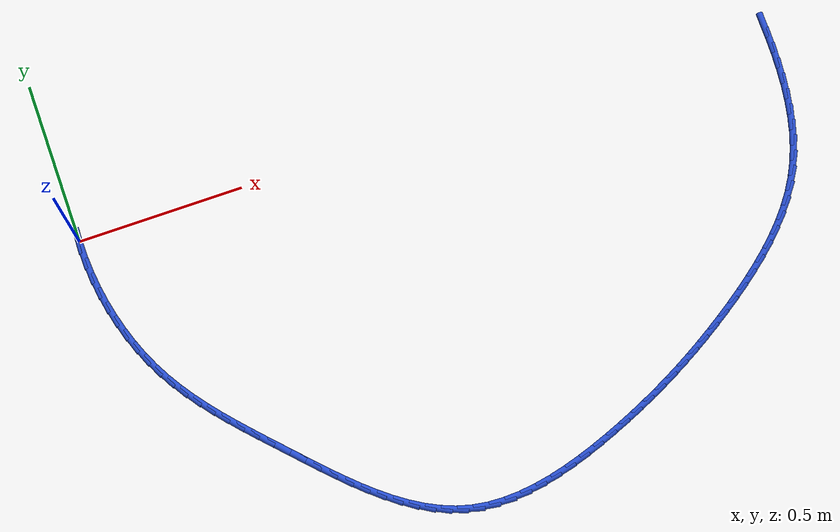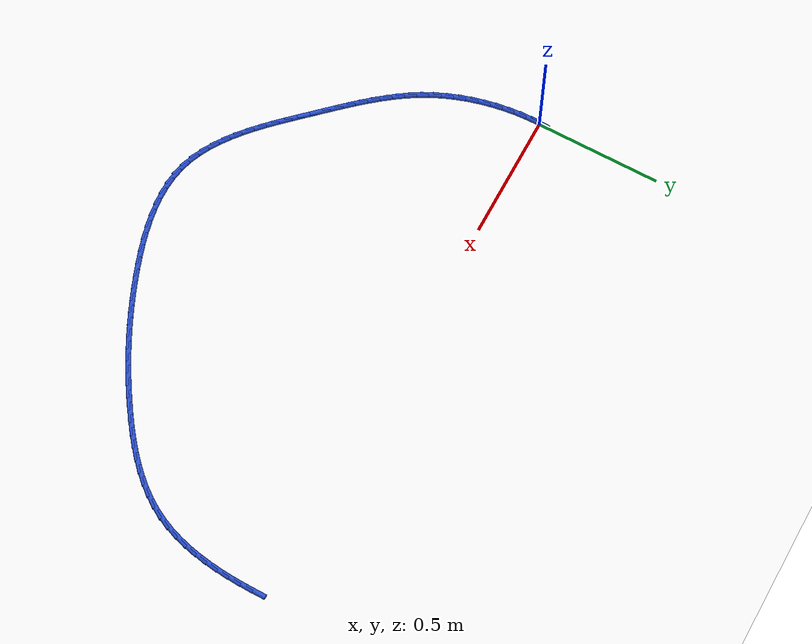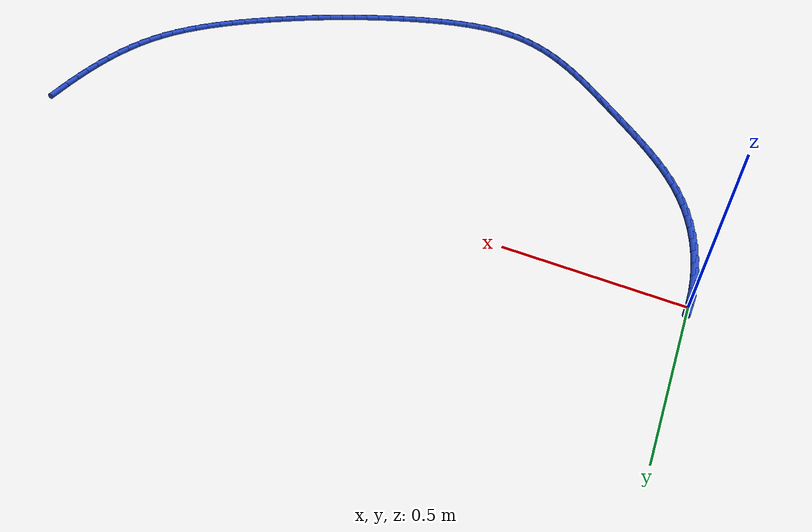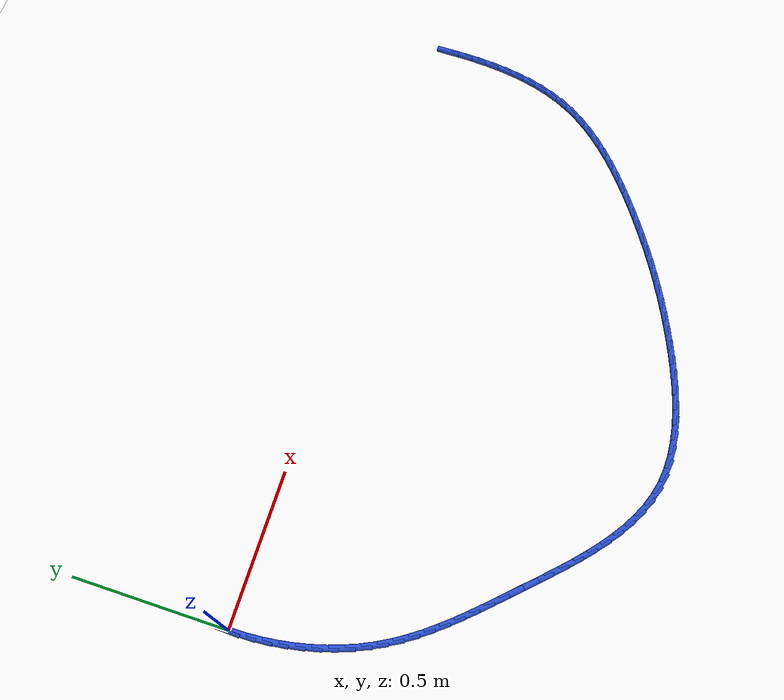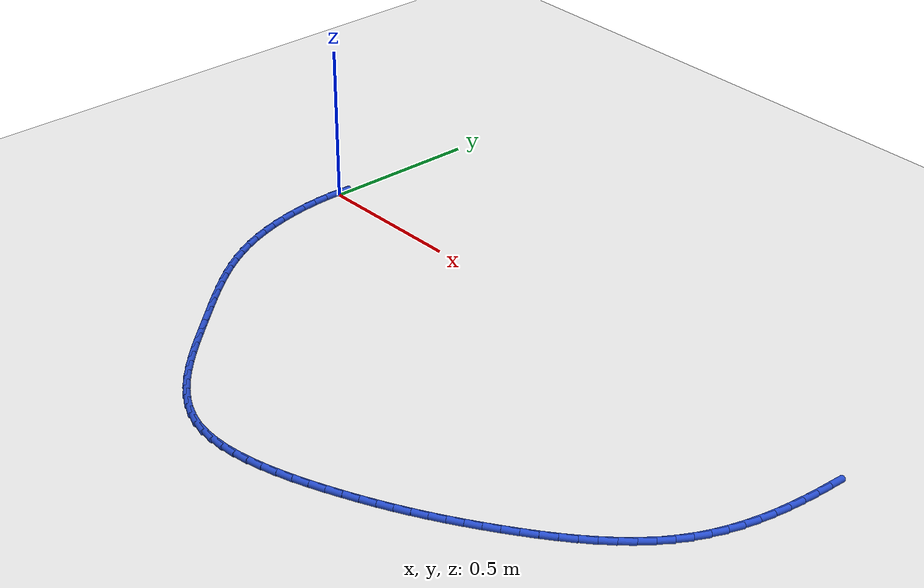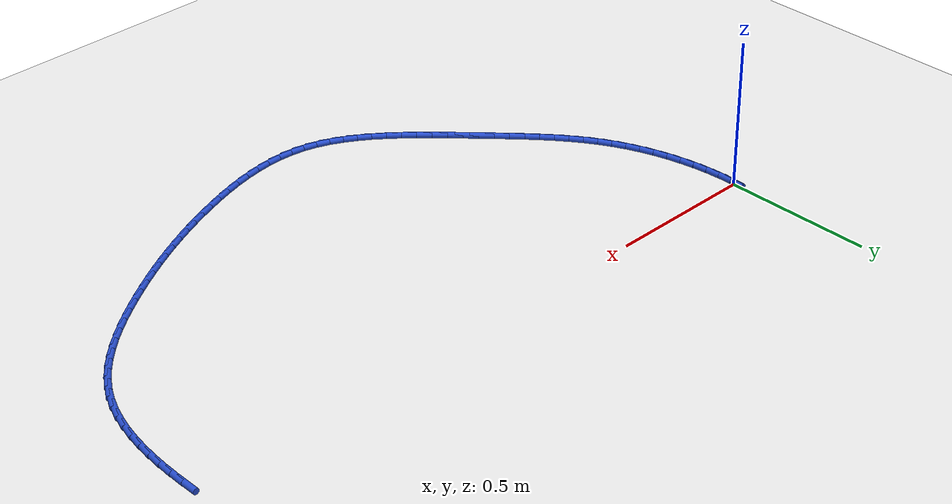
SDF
<sdf version="1.6">
 <world name="default">
  <model name="ground_plane">
   <static>1</static>
   <link name="link">
    <collision name="collision">
     <geometry><plane><normal>0 0 1</normal><size>100 100</size></plane></geometry>
     <surface><friction><ode><mu>100</mu><mu2>50</mu2></ode></friction></surface>
    </collision>
    <visual name="visual">
     <cast_shadows>0</cast_shadows>
     <geometry><plane><normal>0 0 1</normal><size>100 100</size></plane></geometry>
     <material>
      <script><uri>file://media/materials/scripts/gazebo.material</uri><name>Gazebo/WhiteGlow</name></script>
     </material>
    </visual>
   </link>
  </model>
  <model name="line">
   <link name="link_0">
    <pose>4.5102810375396984e-17 -1.3877787807814457e-16 0.01 0 1.57 1.5298107565489703</pose>
    <collision name="collision">
     <geometry><cylinder><radius>0.01</radius><length>0.08</length></cylinder></geometry>
    </collision>
    <visual name="visual">
     <material>
      <script><name>Gazebo/Blue</name><uri>file://media/materials/scripts/gazebo.material</uri></script>
     </material>
     <geometry><cylinder><radius>0.01</radius><length>0.08</length></cylinder></geometry>
    </visual>
   </link>
   <link name="link_71">
    <pose>2.126155542107821 -0.04058322605227191 0.01 0 1.57 1.5616176386527165</pose>
    <collision name="collision">
     <geometry><cylinder><radius>0.01</radius><length>0.08</length></cylinder></geometry>
    </collision>
    <visual name="visual">
     <material>
      <script><name>Gazebo/Blue</name><uri>file://media/materials/scripts/gazebo.material</uri></script>
     </material>
     <geometry><cylinder><radius>0.01</radius><length>0.08</length></cylinder></geometry>
    </visual>
   </link>
   <link name="link_72">
    <pose>2.125694081891426 -0.09085699612621957 0.01 0 1.57 1.534104118408321</pose>
    <collision name="collision">
     <geometry><cylinder><radius>0.01</radius><length>0.08</length></cylinder></geometry>
    </collision>
    <visual name="visual">
     <material>
      <script><name>Gazebo/Blue</name><uri>file://media/materials/scripts/gazebo.material</uri></script>
     </material>
     <geometry><cylinder><radius>0.01</radius><length>0.08</length></cylinder></geometry>
    </visual>
   </link>
   <link name="link_73">
    <pose>2.1238617576548817 -0.14077227640328635 0.01 0 1.57 1.500950438704793</pose>
    <collision name="collision">
     <geometry><cylinder><radius>0.01</radius><length>0.08</length></cylinder></geometry>
    </collision>
    <visual name="visual">
     <material>
      <script><name>Gazebo/Blue</name><uri>file://media/materials/scripts/gazebo.material</uri></script>
     </material>
     <geometry><cylinder><radius>0.01</radius><length>0.08</length></cylinder></geometry>
    </visual>
   </link>
   <link name="link_74">
    <pose>2.1204061514982513 -0.19016652266173714 0.01 0 1.57 1.4617818117217025</pose>
    <collision name="collision">
     <geometry><cylinder><radius>0.01</radius><length>0.08</length></cylinder></geometry>
    </collision>
    <visual name="visual">
     <material>
      <script><name>Gazebo/Blue</name><uri>file://media/materials/scripts/gazebo.material</uri></script>
     </material>
     <geometry><cylinder><radius>0.01</radius><length>0.08</length></cylinder></geometry>
    </visual>
   </link>
   <link name="link_75">
    <pose>2.1150748455215966 -0.23887719067983923 0.01 0 1.57 1.4161954958157235</pose>
    <collision name="collision">
     <geometry><cylinder><radius>0.01</radius><length>0.08</length></cylinder></geometry>
    </collision>
    <visual name="visual">
     <material>
      <script><name>Gazebo/Blue</name><uri>file://media/materials/scripts/gazebo.material</uri></script>
     </material>
     <geometry><cylinder><radius>0.01</radius><length>0.08</length></cylinder></geometry>
    </visual>
   </link>
   <link name="link_76">
    <pose>2.107615421824979 -0.28674173623585913 0.01 0 1.57 1.3637995384842094</pose>
    <collision name="collision">
     <geometry><cylinder><radius>0.01</radius><length>0.08</length></cylinder></geometry>
    </collision>
    <visual name="visual">
     <material>
      <script><name>Gazebo/Blue</name><uri>file://media/materials/scripts/gazebo.material</uri></script>
     </material>
     <geometry><cylinder><radius>0.01</radius><length>0.08</length></cylinder></geometry>
    </visual>
   </link>
   <link name="link_77">
    <pose>2.097775462508461 -0.33359761510806335 0.01 0 1.57 1.304270109160531</pose>
    <collision name="collision">
     <geometry><cylinder><radius>0.01</radius><length>0.08</length></cylinder></geometry>
    </collision>
    <visual name="visual">
     <material>
      <script><name>Gazebo/Blue</name><uri>file://media/materials/scripts/gazebo.material</uri></script>
     </material>
     <geometry><cylinder><radius>0.01</radius><length>0.08</length></cylinder></geometry>
    </visual>
   </link>
   <link name="link_78">
    <pose>2.085302549672104 -0.3792822830747189 0.01 0 1.57 1.2374303117309948</pose>
    <collision name="collision">
     <geometry><cylinder><radius>0.01</radius><length>0.08</length></cylinder></geometry>
    </collision>
    <visual name="visual">
     <material>
      <script><name>Gazebo/Blue</name><uri>file://media/materials/scripts/gazebo.material</uri></script>
     </material>
     <geometry><cylinder><radius>0.01</radius><length>0.08</length></cylinder></geometry>
    </visual>
   </link>
   <link name="link_79">
    <pose>2.0699442654159705 -0.4236331959140911 0.01 0 1.57 1.1633482874820653</pose>
    <collision name="collision">
     <geometry><cylinder><radius>0.01</radius><length>0.08</length></cylinder></geometry>
    </collision>
    <visual name="visual">
     <material>
      <script><name>Gazebo/Blue</name><uri>file://media/materials/scripts/gazebo.material</uri></script>
     </material>
     <geometry><cylinder><radius>0.01</radius><length>0.08</length></cylinder></geometry>
    </visual>
   </link>
   <link name="link_80">
    <pose>2.0514481918401213 -0.466487809404447 0.01 0 1.57 1.0824429496278638</pose>
    <collision name="collision">
     <geometry><cylinder><radius>0.01</radius><length>0.08</length></cylinder></geometry>
    </collision>
    <visual name="visual">
     <material>
      <script><name>Gazebo/Blue</name><uri>file://media/materials/scripts/gazebo.material</uri></script>
     </material>
     <geometry><cylinder><radius>0.01</radius><length>0.08</length></cylinder></geometry>
    </visual>
   </link>
   <link name="link_81">
    <pose>2.0295619126116384 -0.5076835799189534 0.01 0 1.57 0.9981407344268346</pose>
    <collision name="collision">
     <geometry><cylinder><radius>0.01</radius><length>0.08</length></cylinder></geometry>
    </collision>
    <visual name="visual">
     <material>
      <script><name>Gazebo/Blue</name><uri>file://media/materials/scripts/gazebo.material</uri></script>
     </material>
     <geometry><cylinder><radius>0.01</radius><length>0.08</length></cylinder></geometry>
    </visual>
   </link>
   <link name="link_82">
    <pose>2.0041482035846974 -0.547101695192288 0.01 0 1.57 0.9207548499879681</pose>
    <collision name="collision">
     <geometry><cylinder><radius>0.01</radius><length>0.08</length></cylinder></geometry>
    </collision>
    <visual name="visual">
     <material>
      <script><name>Gazebo/Blue</name><uri>file://media/materials/scripts/gazebo.material</uri></script>
     </material>
     <geometry><cylinder><radius>0.01</radius><length>0.08</length></cylinder></geometry>
    </visual>
   </link>
   <link name="link_83">
    <pose>1.9754980369084643 -0.5847859026556256 0.01 0 1.57 0.8524641445979597</pose>
    <collision name="collision">
     <geometry><cylinder><radius>0.01</radius><length>0.08</length></cylinder></geometry>
    </collision>
    <visual name="visual">
     <material>
      <script><name>Gazebo/Blue</name><uri>file://media/materials/scripts/gazebo.material</uri></script>
     </material>
     <geometry><cylinder><radius>0.01</radius><length>0.08</length></cylinder></geometry>
    </visual>
   </link>
   <link name="link_84">
    <pose>1.9440018587713128 -0.6208177138913336 0.01 0 1.57 0.7928408458551787</pose>
    <collision name="collision">
     <geometry><cylinder><radius>0.01</radius><length>0.08</length></cylinder></geometry>
    </collision>
    <visual name="visual">
     <material>
      <script><name>Gazebo/Blue</name><uri>file://media/materials/scripts/gazebo.material</uri></script>
     </material>
     <geometry><cylinder><radius>0.01</radius><length>0.08</length></cylinder></geometry>
    </visual>
   </link>
   <link name="link_85">
    <pose>1.9100501153616152 -0.6552786404817791 0.01 0 1.57 0.741284477686743</pose>
    <collision name="collision">
     <geometry><cylinder><radius>0.01</radius><length>0.08</length></cylinder></geometry>
    </collision>
    <visual name="visual">
     <material>
      <script><name>Gazebo/Blue</name><uri>file://media/materials/scripts/gazebo.material</uri></script>
     </material>
     <geometry><cylinder><radius>0.01</radius><length>0.08</length></cylinder></geometry>
    </visual>
   </link>
   <link name="link_86">
    <pose>1.8740332528677472 -0.6882501940093289 0.01 0 1.57 0.6971459620865529</pose>
    <collision name="collision">
     <geometry><cylinder><radius>0.01</radius><length>0.08</length></cylinder></geometry>
    </collision>
    <visual name="visual">
     <material>
      <script><name>Gazebo/Blue</name><uri>file://media/materials/scripts/gazebo.material</uri></script>
     </material>
     <geometry><cylinder><radius>0.01</radius><length>0.08</length></cylinder></geometry>
    </visual>
   </link>
   <link name="link_87">
    <pose>1.83634171747808 -0.7198138860563503 0.01 0 1.57 0.6598088132379634</pose>
    <collision name="collision">
     <geometry><cylinder><radius>0.01</radius><length>0.08</length></cylinder></geometry>
    </collision>
    <visual name="visual">
     <material>
      <script><name>Gazebo/Blue</name><uri>file://media/materials/scripts/gazebo.material</uri></script>
     </material>
     <geometry><cylinder><radius>0.01</radius><length>0.08</length></cylinder></geometry>
    </visual>
   </link>
   <link name="link_88">
    <pose>1.7973659553809889 -0.7500512282052094 0.01 0 1.57 0.6287384214249829</pose>
    <collision name="collision">
     <geometry><cylinder><radius>0.01</radius><length>0.08</length></cylinder></geometry>
    </collision>
    <visual name="visual">
     <material>
      <script><name>Gazebo/Blue</name><uri>file://media/materials/scripts/gazebo.material</uri></script>
     </material>
     <geometry><cylinder><radius>0.01</radius><length>0.08</length></cylinder></geometry>
    </visual>
   </link>
   <link name="link_89">
    <pose>1.7574964127648467 -0.7790437320382735 0.01 0 1.57 0.6035111698221294</pose>
    <collision name="collision">
     <geometry><cylinder><radius>0.01</radius><length>0.08</length></cylinder></geometry>
    </collision>
    <visual name="visual">
     <material>
      <script><name>Gazebo/Blue</name><uri>file://media/materials/scripts/gazebo.material</uri></script>
     </material>
     <geometry><cylinder><radius>0.01</radius><length>0.08</length></cylinder></geometry>
    </visual>
   </link>
   <link name="link_90">
    <pose>1.7171235358180272 -0.8068729091379093 0.01 0 1.57 0.5831162640980315</pose>
    <collision name="collision">
     <geometry><cylinder><radius>0.01</radius><length>0.08</length></cylinder></geometry>
    </collision>
    <visual name="visual">
     <material>
      <script><name>Gazebo/Blue</name><uri>file://media/materials/scripts/gazebo.material</uri></script>
     </material>
     <geometry><cylinder><radius>0.01</radius><length>0.08</length></cylinder></geometry>
    </visual>
   </link>
   <link name="link_91">
    <pose>1.676582277713363 -0.833615199317259 0.01 0 1.57 0.5633278113620747</pose>
    <collision name="collision">
     <geometry><cylinder><radius>0.01</radius><length>0.08</length></cylinder></geometry>
    </collision>
    <visual name="visual">
     <material>
      <script><name>Gazebo/Blue</name><uri>file://media/materials/scripts/gazebo.material</uri></script>
     </material>
     <geometry><cylinder><radius>0.01</radius><length>0.08</length></cylinder></geometry>
    </visual>
   </link>
   <link name="link_92">
    <pose>1.6358875470246985 -0.8593177919994418 0.01 0 1.57 0.5427676317736418</pose>
    <collision name="collision">
     <geometry><cylinder><radius>0.01</radius><length>0.08</length></cylinder></geometry>
    </collision>
    <visual name="visual">
     <material>
      <script><name>Gazebo/Blue</name><uri>file://media/materials/scripts/gazebo.material</uri></script>
     </material>
     <geometry><cylinder><radius>0.01</radius><length>0.08</length></cylinder></geometry>
    </visual>
   </link>
   <link name="link_93">
    <pose>1.5949397620266814 -0.8840174127974857 0.01 0 1.57 0.5215710474628408</pose>
    <collision name="collision">
     <geometry><cylinder><radius>0.01</radius><length>0.08</length></cylinder></geometry>
    </collision>
    <visual name="visual">
     <material>
      <script><name>Gazebo/Blue</name><uri>file://media/materials/scripts/gazebo.material</uri></script>
     </material>
     <geometry><cylinder><radius>0.01</radius><length>0.08</length></cylinder></geometry>
    </visual>
   </link>
   <link name="link_94">
    <pose>1.5536391964447314 -0.9077507741133805 0.01 0 1.57 0.4998894465449433</pose>
    <collision name="collision">
     <geometry><cylinder><radius>0.01</radius><length>0.08</length></cylinder></geometry>
    </collision>
    <visual name="visual">
     <material>
      <script><name>Gazebo/Blue</name><uri>file://media/materials/scripts/gazebo.material</uri></script>
     </material>
     <geometry><cylinder><radius>0.01</radius><length>0.08</length></cylinder></geometry>
    </visual>
   </link>
   <link name="link_95">
    <pose>1.5118861240042676 -0.930554588349116 0.01 0 1.57 0.4778846388692233</pose>
    <collision name="collision">
     <geometry><cylinder><radius>0.01</radius><length>0.08</length></cylinder></geometry>
    </collision>
    <visual name="visual">
     <material>
      <script><name>Gazebo/Blue</name><uri>file://media/materials/scripts/gazebo.material</uri></script>
     </material>
     <geometry><cylinder><radius>0.01</radius><length>0.08</length></cylinder></geometry>
    </visual>
   </link>
   <link name="link_96">
    <pose>1.4695808184307106 -0.9524655679066814 0.01 0 1.57 0.4557244759910862</pose>
    <collision name="collision">
     <geometry><cylinder><radius>0.01</radius><length>0.08</length></cylinder></geometry>
    </collision>
    <visual name="visual">
     <material>
      <script><name>Gazebo/Blue</name><uri>file://media/materials/scripts/gazebo.material</uri></script>
     </material>
     <geometry><cylinder><radius>0.01</radius><length>0.08</length></cylinder></geometry>
    </visual>
   </link>
   <link name="link_97">
    <pose>1.4266235534494796 -0.9735204251880665 0.01 0 1.57 0.433578132231456</pose>
    <collision name="collision">
     <geometry><cylinder><radius>0.01</radius><length>0.08</length></cylinder></geometry>
    </collision>
    <visual name="visual">
     <material>
      <script><name>Gazebo/Blue</name><uri>file://media/materials/scripts/gazebo.material</uri></script>
     </material>
     <geometry><cylinder><radius>0.01</radius><length>0.08</length></cylinder></geometry>
    </visual>
   </link>
   <link name="link_98">
    <pose>1.382914602785995 -0.9937558725952614 0.01 0 1.57 0.4116113469931328</pose>
    <collision name="collision">
     <geometry><cylinder><radius>0.01</radius><length>0.08</length></cylinder></geometry>
    </collision>
    <visual name="visual">
     <material>
      <script><name>Gazebo/Blue</name><uri>file://media/materials/scripts/gazebo.material</uri></script>
     </material>
     <geometry><cylinder><radius>0.01</radius><length>0.08</length></cylinder></geometry>
    </visual>
   </link>
   <link name="link_99">
    <pose>1.3383542401656754 -1.013208622530255 0.01 0 1.57 0.38998193161550776</pose>
    <collision name="collision">
     <geometry><cylinder><radius>0.01</radius><length>0.08</length></cylinder></geometry>
    </collision>
    <visual name="visual">
     <material>
      <script><name>Gazebo/Blue</name><uri>file://media/materials/scripts/gazebo.material</uri></script>
     </material>
     <geometry><cylinder><radius>0.01</radius><length>0.08</length></cylinder></geometry>
    </visual>
   </link>
   <link name="link_100">
    <pose>1.2928427393139401 -1.031915387395038 0.01 0 1.57 0.36842432659064034</pose>
    <collision name="collision">
     <geometry><cylinder><radius>0.01</radius><length>0.08</length></cylinder></geometry>
    </collision>
    <visual name="visual">
     <material>
      <script><name>Gazebo/Blue</name><uri>file://media/materials/scripts/gazebo.material</uri></script>
     </material>
     <geometry><cylinder><radius>0.01</radius><length>0.08</length></cylinder></geometry>
    </visual>
   </link>
   <link name="link_101">
    <pose>1.246302886306749 -1.049882169925419 0.01 0 1.57 0.3430309051947211</pose>
    <collision name="collision">
     <geometry><cylinder><radius>0.01</radius><length>0.08</length></cylinder></geometry>
    </collision>
    <visual name="visual">
     <material>
      <script><name>Gazebo/Blue</name><uri>file://media/materials/scripts/gazebo.material</uri></script>
     </material>
     <geometry><cylinder><radius>0.01</radius><length>0.08</length></cylinder></geometry>
    </visual>
   </link>
   <link name="link_102">
    <pose>1.1988721773743887 -1.066822081310665 0.01 0 1.57 0.31126762344335873</pose>
    <collision name="collision">
     <geometry><cylinder><radius>0.01</radius><length>0.08</length></cylinder></geometry>
    </collision>
    <visual name="visual">
     <material>
      <script><name>Gazebo/Blue</name><uri>file://media/materials/scripts/gazebo.material</uri></script>
     </material>
     <geometry><cylinder><radius>0.01</radius><length>0.08</length></cylinder></geometry>
    </visual>
   </link>
   <link name="link_103">
    <pose>1.150807156164525 -1.0822858371500694 0.01 0 1.57 0.27249101662620795</pose>
    <collision name="collision">
     <geometry><cylinder><radius>0.01</radius><length>0.08</length></cylinder></geometry>
    </collision>
    <visual name="visual">
     <material>
      <script><name>Gazebo/Blue</name><uri>file://media/materials/scripts/gazebo.material</uri></script>
     </material>
     <geometry><cylinder><radius>0.01</radius><length>0.08</length></cylinder></geometry>
    </visual>
   </link>
   <link name="link_104">
    <pose>1.1023656340919437 -1.095822423649759 0.01 0 1.57 0.2258640858415369</pose>
    <collision name="collision">
     <geometry><cylinder><radius>0.01</radius><length>0.08</length></cylinder></geometry>
    </collision>
    <visual name="visual">
     <material>
      <script><name>Gazebo/Blue</name><uri>file://media/materials/scripts/gazebo.material</uri></script>
     </material>
     <geometry><cylinder><radius>0.01</radius><length>0.08</length></cylinder></geometry>
    </visual>
   </link>
   <link name="link_105">
    <pose>1.0538054225714326 -1.1069808270158594 0.01 0 1.57 0.1703489625053704</pose>
    <collision name="collision">
     <geometry><cylinder><radius>0.01</radius><length>0.08</length></cylinder></geometry>
    </collision>
    <visual name="visual">
     <material>
      <script><name>Gazebo/Blue</name><uri>file://media/materials/scripts/gazebo.material</uri></script>
     </material>
     <geometry><cylinder><radius>0.01</radius><length>0.08</length></cylinder></geometry>
    </visual>
   </link>
   <link name="link_106">
    <pose>1.00538433301778 -1.1153100334544992 0.01 0 1.57 0.10474969052787847</pose>
    <collision name="collision">
     <geometry><cylinder><radius>0.01</radius><length>0.08</length></cylinder></geometry>
    </collision>
    <visual name="visual">
     <material>
      <script><name>Gazebo/Blue</name><uri>file://media/materials/scripts/gazebo.material</uri></script>
     </material>
     <geometry><cylinder><radius>0.01</radius><length>0.08</length></cylinder></geometry>
    </visual>
   </link>
   <link name="link_107">
    <pose>0.9573601768457726 -1.1203590291718053 0.01 0 1.57 0.027811859619557212</pose>
    <collision name="collision">
     <geometry><cylinder><radius>0.01</radius><length>0.08</length></cylinder></geometry>
    </collision>
    <visual name="visual">
     <material>
      <script><name>Gazebo/Blue</name><uri>file://media/materials/scripts/gazebo.material</uri></script>
     </material>
     <geometry><cylinder><radius>0.01</radius><length>0.08</length></cylinder></geometry>
    </visual>
   </link>
   <link name="link_108">
    <pose>0.909990765470197 -1.1216768003739033 0.01 0 1.57 -0.061580692907020264</pose>
    <collision name="collision">
     <geometry><cylinder><radius>0.01</radius><length>0.08</length></cylinder></geometry>
    </collision>
    <visual name="visual">
     <material>
      <script><name>Gazebo/Blue</name><uri>file://media/materials/scripts/gazebo.material</uri></script>
     </material>
     <geometry><cylinder><radius>0.01</radius><length>0.08</length></cylinder></geometry>
    </visual>
   </link>
   <link name="link_109">
    <pose>0.8635339103058407 -1.1188123332669215 0.01 0 1.57 -0.1640736263061928</pose>
    <collision name="collision">
     <geometry><cylinder><radius>0.01</radius><length>0.08</length></cylinder></geometry>
    </collision>
    <visual name="visual">
     <material>
      <script><name>Gazebo/Blue</name><uri>file://media/materials/scripts/gazebo.material</uri></script>
     </material>
     <geometry><cylinder><radius>0.01</radius><length>0.08</length></cylinder></geometry>
    </visual>
   </link>
   <link name="link_110">
    <pose>0.8182474227674922 -1.1113146140569865 0.01 0 1.57 -0.27656878024785214</pose>
    <collision name="collision">
     <geometry><cylinder><radius>0.01</radius><length>0.08</length></cylinder></geometry>
    </collision>
    <visual name="visual">
     <material>
      <script><name>Gazebo/Blue</name><uri>file://media/materials/scripts/gazebo.material</uri></script>
     </material>
     <geometry><cylinder><radius>0.01</radius><length>0.08</length></cylinder></geometry>
    </visual>
   </link>
   <link name="link_111">
    <pose>0.7743434823767766 -1.0988527864002564 0.01 0 1.57 -0.38279621369221545</pose>
    <collision name="collision">
     <geometry><cylinder><radius>0.01</radius><length>0.08</length></cylinder></geometry>
    </collision>
    <visual name="visual">
     <material>
      <script><name>Gazebo/Blue</name><uri>file://media/materials/scripts/gazebo.material</uri></script>
     </material>
     <geometry><cylinder><radius>0.01</radius><length>0.08</length></cylinder></geometry>
    </visual>
   </link>
   <link name="link_112">
    <pose>0.731796897951573 -1.0817210361437415 0.01 0 1.57 -0.4763377603608988</pose>
    <collision name="collision">
     <geometry><cylinder><radius>0.01</radius><length>0.08</length></cylinder></geometry>
    </collision>
    <visual name="visual">
     <material>
      <script><name>Gazebo/Blue</name><uri>file://media/materials/scripts/gazebo.material</uri></script>
     </material>
     <geometry><cylinder><radius>0.01</radius><length>0.08</length></cylinder></geometry>
    </visual>
   </link>
   <link name="link_113">
    <pose>0.6905055384966959 -1.060416146289711 0.01 0 1.57 -0.5567105967815862</pose>
    <collision name="collision">
     <geometry><cylinder><radius>0.01</radius><length>0.08</length></cylinder></geometry>
    </collision>
    <visual name="visual">
     <material>
      <script><name>Gazebo/Blue</name><uri>file://media/materials/scripts/gazebo.material</uri></script>
     </material>
     <geometry><cylinder><radius>0.01</radius><length>0.08</length></cylinder></geometry>
    </visual>
   </link>
   <link name="link_114">
    <pose>0.6503672332469924 -1.0354350045623273 0.01 0 1.57 -0.6243188968057775</pose>
    <collision name="collision">
     <geometry><cylinder><radius>0.01</radius><length>0.08</length></cylinder></geometry>
    </collision>
    <visual name="visual">
     <material>
      <script><name>Gazebo/Blue</name><uri>file://media/materials/scripts/gazebo.material</uri></script>
     </material>
     <geometry><cylinder><radius>0.01</radius><length>0.08</length></cylinder></geometry>
    </visual>
   </link>
   <link name="link_115">
    <pose>0.6112798114373078 -1.0072744986857496 0.01 0 1.57 -0.6800266537753792</pose>
    <collision name="collision">
     <geometry><cylinder><radius>0.01</radius><length>0.08</length></cylinder></geometry>
    </collision>
    <visual name="visual">
     <material>
      <script><name>Gazebo/Blue</name><uri>file://media/materials/scripts/gazebo.material</uri></script>
     </material>
     <geometry><cylinder><radius>0.01</radius><length>0.08</length></cylinder></geometry>
    </visual>
   </link>
   <link name="link_116">
    <pose>0.5731411023024878 -0.976431516384139 0.01 0 1.57 -0.7248415853706474</pose>
    <collision name="collision">
     <geometry><cylinder><radius>0.01</radius><length>0.08</length></cylinder></geometry>
    </collision>
    <visual name="visual">
     <material>
      <script><name>Gazebo/Blue</name><uri>file://media/materials/scripts/gazebo.material</uri></script>
     </material>
     <geometry><cylinder><radius>0.01</radius><length>0.08</length></cylinder></geometry>
    </visual>
   </link>
   <link name="link_117">
    <pose>0.535848935077378 -0.9434029453816553 0.01 0 1.57 -0.7597176760149957</pose>
    <collision name="collision">
     <geometry><cylinder><radius>0.01</radius><length>0.08</length></cylinder></geometry>
    </collision>
    <visual name="visual">
     <material>
      <script><name>Gazebo/Blue</name><uri>file://media/materials/scripts/gazebo.material</uri></script>
     </material>
     <geometry><cylinder><radius>0.01</radius><length>0.08</length></cylinder></geometry>
    </visual>
   </link>
   <link name="link_118">
    <pose>0.49930113899682466 -0.9086856734024594 0.01 0 1.57 -0.785446754166753</pose>
    <collision name="collision">
     <geometry><cylinder><radius>0.01</radius><length>0.08</length></cylinder></geometry>
    </collision>
    <visual name="visual">
     <material>
      <script><name>Gazebo/Blue</name><uri>file://media/materials/scripts/gazebo.material</uri></script>
     </material>
     <geometry><cylinder><radius>0.01</radius><length>0.08</length></cylinder></geometry>
    </visual>
   </link>
   <link name="link_119">
    <pose>0.4633955432956737 -0.8727765881707118 0.01 0 1.57 -0.8026043567634549</pose>
    <collision name="collision">
     <geometry><cylinder><radius>0.01</radius><length>0.08</length></cylinder></geometry>
    </collision>
    <visual name="visual">
     <material>
      <script><name>Gazebo/Blue</name><uri>file://media/materials/scripts/gazebo.material</uri></script>
     </material>
     <geometry><cylinder><radius>0.01</radius><length>0.08</length></cylinder></geometry>
    </visual>
   </link>
   <link name="link_120">
    <pose>0.4280299772087706 -0.8361725774105725 0.01 0 1.57 -0.811522815226432</pose>
    <collision name="collision">
     <geometry><cylinder><radius>0.01</radius><length>0.08</length></cylinder></geometry>
    </collision>
    <visual name="visual">
     <material>
      <script><name>Gazebo/Blue</name><uri>file://media/materials/scripts/gazebo.material</uri></script>
     </material>
     <geometry><cylinder><radius>0.01</radius><length>0.08</length></cylinder></geometry>
    </visual>
   </link>
   <link name="link_121">
    <pose>0.3931022699709615 -0.7993705288462024 0.01 0 1.57 -0.8126273752929949</pose>
    <collision name="collision">
     <geometry><cylinder><radius>0.01</radius><length>0.08</length></cylinder></geometry>
    </collision>
    <visual name="visual">
     <material>
      <script><name>Gazebo/Blue</name><uri>file://media/materials/scripts/gazebo.material</uri></script>
     </material>
     <geometry><cylinder><radius>0.01</radius><length>0.08</length></cylinder></geometry>
    </visual>
   </link>
   <link name="link_122">
    <pose>0.35851812259436705 -0.7628497723310425 0.01 0 1.57 -0.8132065413760118</pose>
    <collision name="collision">
     <geometry><cylinder><radius>0.01</radius><length>0.08</length></cylinder></geometry>
    </collision>
    <visual name="visual">
     <material>
      <script><name>Gazebo/Blue</name><uri>file://media/materials/scripts/gazebo.material</uri></script>
     </material>
     <geometry><cylinder><radius>0.01</radius><length>0.08</length></cylinder></geometry>
    </visual>
   </link>
   <link name="link_123">
    <pose>0.3243473290666508 -0.7267236310151567 0.01 0 1.57 -0.8203768412461414</pose>
    <collision name="collision">
     <geometry><cylinder><radius>0.01</radius><length>0.08</length></cylinder></geometry>
    </collision>
    <visual name="visual">
     <material>
      <script><name>Gazebo/Blue</name><uri>file://media/materials/scripts/gazebo.material</uri></script>
     </material>
     <geometry><cylinder><radius>0.01</radius><length>0.08</length></cylinder></geometry>
    </visual>
   </link>
   <link name="link_124">
    <pose>0.29081487409631407 -0.6907592776790223 0.01 0 1.57 -0.8346354975128684</pose>
    <collision name="collision">
     <geometry><cylinder><radius>0.01</radius><length>0.08</length></cylinder></geometry>
    </collision>
    <visual name="visual">
     <material>
      <script><name>Gazebo/Blue</name><uri>file://media/materials/scripts/gazebo.material</uri></script>
     </material>
     <geometry><cylinder><radius>0.01</radius><length>0.08</length></cylinder></geometry>
    </visual>
   </link>
   <link name="link_125">
    <pose>0.25815183198152236 -0.654710302372777 0.01 0 1.57 -0.8561844739076417</pose>
    <collision name="collision">
     <geometry><cylinder><radius>0.01</radius><length>0.08</length></cylinder></geometry>
    </collision>
    <visual name="visual">
     <material>
      <script><name>Gazebo/Blue</name><uri>file://media/materials/scripts/gazebo.material</uri></script>
     </material>
     <geometry><cylinder><radius>0.01</radius><length>0.08</length></cylinder></geometry>
    </visual>
   </link>
   <link name="link_126">
    <pose>0.22658927702044068 -0.6183302951465581 0.01 0 1.57 -0.8851789762812208</pose>
    <collision name="collision">
     <geometry><cylinder><radius>0.01</radius><length>0.08</length></cylinder></geometry>
    </collision>
    <visual name="visual">
     <material>
      <script><name>Gazebo/Blue</name><uri>file://media/materials/scripts/gazebo.material</uri></script>
     </material>
     <geometry><cylinder><radius>0.01</radius><length>0.08</length></cylinder></geometry>
    </visual>
   </link>
   <link name="link_127">
    <pose>0.19635828351123544 -0.5813728460505035 0.01 0 1.57 -0.9216885347246969</pose>
    <collision name="collision">
     <geometry><cylinder><radius>0.01</radius><length>0.08</length></cylinder></geometry>
    </collision>
    <visual name="visual">
     <material>
      <script><name>Gazebo/Blue</name><uri>file://media/materials/scripts/gazebo.material</uri></script>
     </material>
     <geometry><cylinder><radius>0.01</radius><length>0.08</length></cylinder></geometry>
    </visual>
   </link>
   <link name="link_128">
    <pose>0.16768992575207142 -0.5435915451347505 0.01 0 1.57 -0.9656447912420704</pose>
    <collision name="collision">
     <geometry><cylinder><radius>0.01</radius><length>0.08</length></cylinder></geometry>
    </collision>
    <visual name="visual">
     <material>
      <script><name>Gazebo/Blue</name><uri>file://media/materials/scripts/gazebo.material</uri></script>
     </material>
     <geometry><cylinder><radius>0.01</radius><length>0.08</length></cylinder></geometry>
    </visual>
   </link>
   <link name="link_129">
    <pose>0.14081527804111416 -0.5047399824494363 0.01 0 1.57 -1.016780209034345</pose>
    <collision name="collision">
     <geometry><cylinder><radius>0.01</radius><length>0.08</length></cylinder></geometry>
    </collision>
    <visual name="visual">
     <material>
      <script><name>Gazebo/Blue</name><uri>file://media/materials/scripts/gazebo.material</uri></script>
     </material>
     <geometry><cylinder><radius>0.01</radius><length>0.08</length></cylinder></geometry>
    </visual>
   </link>
   <link name="link_130">
    <pose>0.1159654146765291 -0.4645717480446981 0.01 0 1.57 -1.074540823201126</pose>
    <collision name="collision">
     <geometry><cylinder><radius>0.01</radius><length>0.08</length></cylinder></geometry>
    </collision>
    <visual name="visual">
     <material>
      <script><name>Gazebo/Blue</name><uri>file://media/materials/scripts/gazebo.material</uri></script>
     </material>
     <geometry><cylinder><radius>0.01</radius><length>0.08</length></cylinder></geometry>
    </visual>
   </link>
   <link name="link_131">
    <pose>0.09337074819229967 -0.42284185376561284 0.01 0 1.57 -1.1353701695491771</pose>
    <collision name="collision">
     <geometry><cylinder><radius>0.01</radius><length>0.08</length></cylinder></geometry>
    </collision>
    <visual name="visual">
     <material>
      <script><name>Gazebo/Blue</name><uri>file://media/materials/scripts/gazebo.material</uri></script>
     </material>
     <geometry><cylinder><radius>0.01</radius><length>0.08</length></cylinder></geometry>
    </visual>
   </link>
   <link name="link_132">
    <pose>0.0731894941309813 -0.37946042610375313 0.01 0 1.57 -1.193877860812307</pose>
    <collision name="collision">
     <geometry><cylinder><radius>0.01</radius><length>0.08</length></cylinder></geometry>
    </collision>
    <visual name="visual">
     <material>
      <script><name>Gazebo/Blue</name><uri>file://media/materials/scripts/gazebo.material</uri></script>
     </material>
     <geometry><cylinder><radius>0.01</radius><length>0.08</length></cylinder></geometry>
    </visual>
   </link>
   <link name="link_133">
    <pose>0.05544369927820695 -0.3346301490129226 0.01 0 1.57 -1.2499182108240736</pose>
    <collision name="collision">
     <geometry><cylinder><radius>0.01</radius><length>0.08</length></cylinder></geometry>
    </collision>
    <visual name="visual">
     <material>
      <script><name>Gazebo/Blue</name><uri>file://media/materials/scripts/gazebo.material</uri></script>
     </material>
     <geometry><cylinder><radius>0.01</radius><length>0.08</length></cylinder></geometry>
    </visual>
   </link>
   <link name="link_134">
    <pose>0.04014031609650017 -0.2885861364768602 0.01 0 1.57 -1.3039571941194499</pose>
    <collision name="collision">
     <geometry><cylinder><radius>0.01</radius><length>0.08</length></cylinder></geometry>
    </collision>
    <visual name="visual">
     <material>
      <script><name>Gazebo/Blue</name><uri>file://media/materials/scripts/gazebo.material</uri></script>
     </material>
     <geometry><cylinder><radius>0.01</radius><length>0.08</length></cylinder></geometry>
    </visual>
   </link>
   <link name="link_135">
    <pose>0.027286297048384416 -0.24156350247930428 0.01 0 1.57 -1.3564606160056922</pose>
    <collision name="collision">
     <geometry><cylinder><radius>0.01</radius><length>0.08</length></cylinder></geometry>
    </collision>
    <visual name="visual">
     <material>
      <script><name>Gazebo/Blue</name><uri>file://media/materials/scripts/gazebo.material</uri></script>
     </material>
     <geometry><cylinder><radius>0.01</radius><length>0.08</length></cylinder></geometry>
    </visual>
   </link>
   <link name="link_136">
    <pose>0.016888594596383654 -0.19379736100399536 0.01 0 1.57 -1.4078921879891406</pose>
    <collision name="collision">
     <geometry><cylinder><radius>0.01</radius><length>0.08</length></cylinder></geometry>
    </collision>
    <visual name="visual">
     <material>
      <script><name>Gazebo/Blue</name><uri>file://media/materials/scripts/gazebo.material</uri></script>
     </material>
     <geometry><cylinder><radius>0.01</radius><length>0.08</length></cylinder></geometry>
    </visual>
   </link>
   <link name="link_137">
    <pose>0.00895416120302124 -0.14552282603467145 0.01 0 1.57 -1.458714829586702</pose>
    <collision name="collision">
     <geometry><cylinder><radius>0.01</radius><length>0.08</length></cylinder></geometry>
    </collision>
    <visual name="visual">
     <material>
      <script><name>Gazebo/Blue</name><uri>file://media/materials/scripts/gazebo.material</uri></script>
     </material>
     <geometry><cylinder><radius>0.01</radius><length>0.08</length></cylinder></geometry>
    </visual>
   </link>
   <link name="link_138">
    <pose>0.0034899493308207744 -0.09697501155507171 0.01 0 1.57 -1.509394189556698</pose>
    <collision name="collision">
     <geometry><cylinder><radius>0.01</radius><length>0.08</length></cylinder></geometry>
    </collision>
    <visual name="visual">
     <material>
      <script><name>Gazebo/Blue</name><uri>file://media/materials/scripts/gazebo.material</uri></script>
     </material>
     <geometry><cylinder><radius>0.01</radius><length>0.08</length></cylinder></geometry>
    </visual>
   </link>
   <link name="link_139">
    <pose>0.0005029114423058412 -0.048389031548935195 0.01 0 1.57 -1.5604036134083632</pose>
    <collision name="collision">
     <geometry><cylinder><radius>0.01</radius><length>0.08</length></cylinder></geometry>
    </collision>
    <visual name="visual">
     <material>
      <script><name>Gazebo/Blue</name><uri>file://media/materials/scripts/gazebo.material</uri></script>
     </material>
     <geometry><cylinder><radius>0.01</radius><length>0.08</length></cylinder></geometry>
    </visual>
   </link>
   <link name="link_140">
    <pose>3.469446951953614e-17 2.7755575615628914e-17 0.01 0 1.57 1.5293627322804417</pose>
    <collision name="collision">
     <geometry><cylinder><radius>0.01</radius><length>0.08</length></cylinder></geometry>
    </collision>
    <visual name="visual">
     <material>
      <script><name>Gazebo/Blue</name><uri>file://media/materials/scripts/gazebo.material</uri></script>
     </material>
     <geometry><cylinder><radius>0.01</radius><length>0.08</length></cylinder></geometry>
    </visual>
   </link>
  </model>
 </world>
</sdf>
